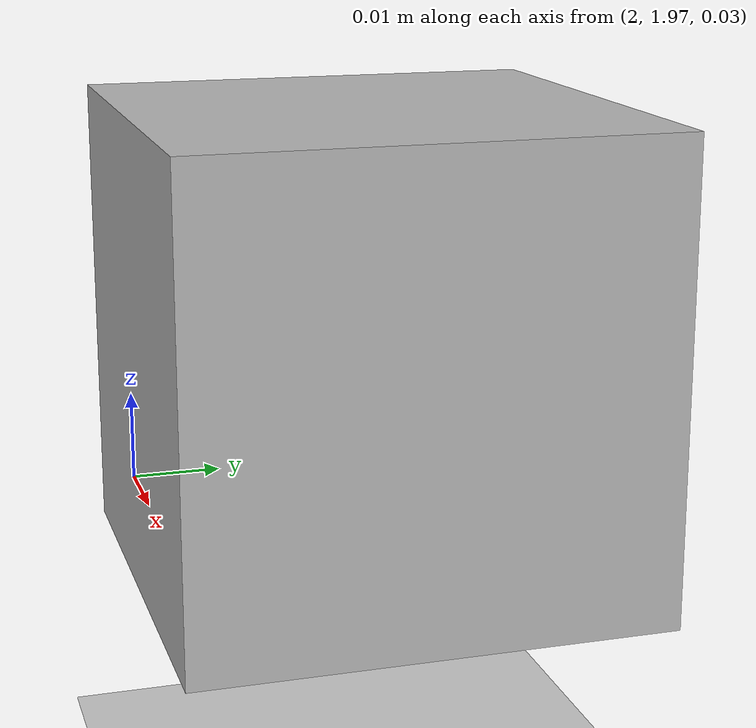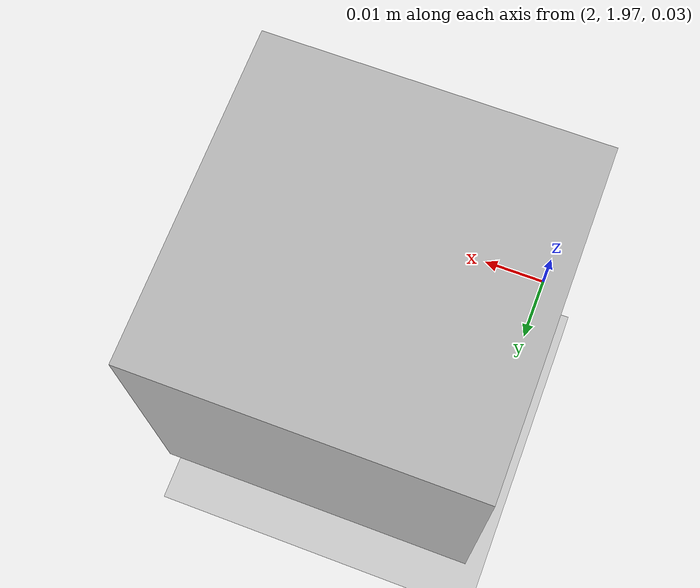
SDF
<sdf version="1.4">
 <world name="default">
  <model name="ground_plane">
   <static>1</static>
   <link name="link">
    <collision name="collision">
     <geometry><plane><normal>0 0 1</normal><size>100 100</size></plane></geometry>
     <surface><friction><ode><mu>100</mu><mu2>50</mu2></ode></friction></surface>
    </collision>
    <visual name="visual">
     <cast_shadows>0</cast_shadows>
     <geometry><plane><normal>0 0 1</normal><size>100 100</size></plane></geometry>
     <material>
      <script><uri>file://media/materials/scripts/gazebo.material</uri><name>Gazebo/Grey</name></script>
     </material>
    </visual>
    <velocity_decay><linear>0</linear><angular>0</angular></velocity_decay>
   </link>
  </model>
  <light name="sun" type="directional">
   <pose>0 0 10 0 -0 0</pose>
   <diffuse>0.8 0.8 0.8 1</diffuse>
   <specular>0.2 0.2 0.2 1</specular>
   <attenuation>
    <range>1000</range>
    <constant>0.9</constant>
    <linear>0.01</linear>
    <quadratic>0.001</quadratic>
   </attenuation>
   <direction>-0.5 0.1 -0.9</direction>
  </light>
  <plugin name="SetupWorld" filename="libgazebo_plugins.so"/>
  <physics type="ode">
   <max_step_size>0.001</max_step_size>
   <real_time_factor>1</real_time_factor>
   <real_time_update_rate>1000</real_time_update_rate>
   <gravity>0 0 -9.8</gravity>
  </physics>
  <scene><ambient>0.4 0.4 0.4 1</ambient><background>0.7 0.7 0.7 1</background><shadows>1</shadows></scene>
  <spherical_coordinates>
   <surface_model>EARTH_WGS84</surface_model>
   <latitude_deg>0</latitude_deg>
   <longitude_deg>0</longitude_deg>
   <elevation>0</elevation>
   <heading_deg>0</heading_deg>
  </spherical_coordinates>
  <model name="at0">
   <static>0</static>
   <link name="link">
    <inertial>
     <mass>0.1</mass>
     <inertia><ixx>4e-05</ixx><ixy>0</ixy><ixz>0</ixz><iyy>4e-05</iyy><iyz>0</iyz><izz>4e-05</izz></inertia>
    </inertial>
    <visual name="visual">
     <transparency>0.1</transparency>
     <geometry><box><size>0.05 0.05 0.05</size></box></geometry>
     <material>
      <script>
       <uri>model://at0/materials/scripts</uri>
       <uri>model://at0/materials/textures</uri>
       <name>at0/Diffuse</name>
      </script>
     </material>
    </visual>
    <collision name="collision">
     <geometry><box><size>0.05 0.05 0.05</size></box></geometry>
     <surface><friction><ode><mu>0.8</mu><mu2>0.7</mu2></ode></friction></surface>
    </collision>
    <velocity_decay><linear>0</linear><angular>0</angular></velocity_decay>
   </link>
   <pose>2.02191 1.99181 0.05 0 -0 4e-06</pose>
  </model>
 </world>
</sdf>
